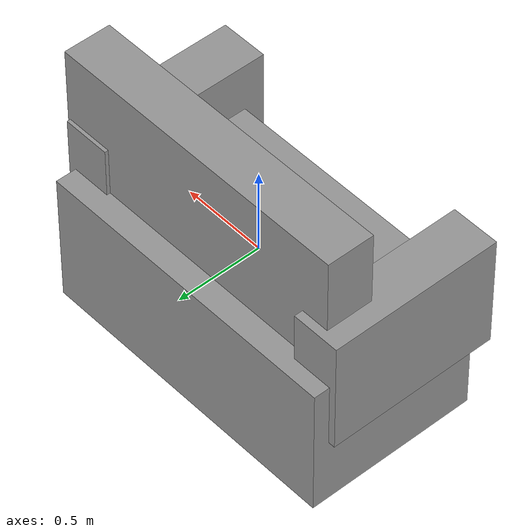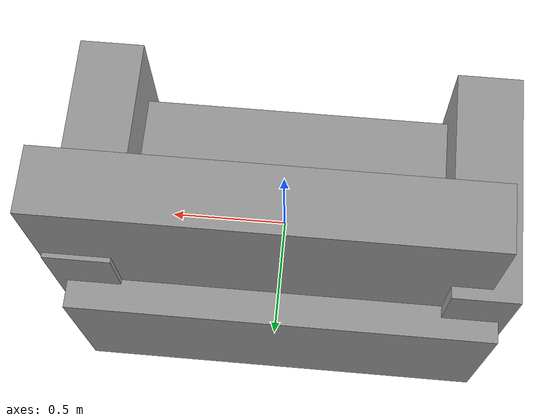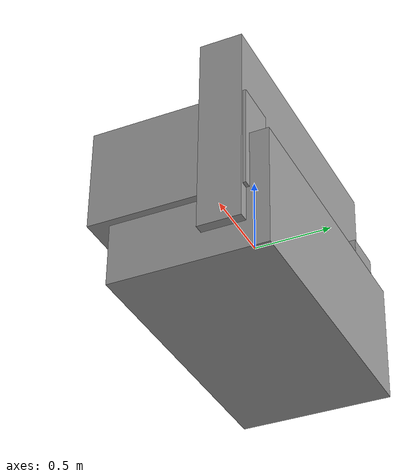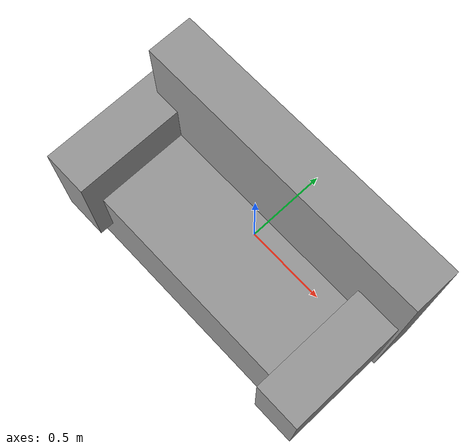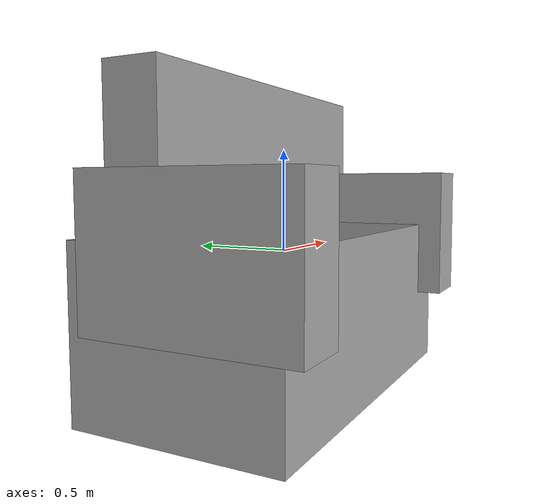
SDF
<?xml version='1.0'?>
<sdf version='1.6'>
  <model name='couch'>
    <link name='link_0'>
      <pose frame=''>-0.01902 -0.002099 -0.285741 0 -0 0</pose>
      <inertial>
        <mass>1.44585</mass>
        <inertia>
          <ixx>0.195146</ixx>
          <ixy>0</ixy>
          <ixz>0</ixz>
          <iyy>0.481156</iyy>
          <iyz>0</iyz>
          <izz>0.526986</izz>
        </inertia>
        <pose frame=''>0 0 0 0 -0 0</pose>
      </inertial>
      <visual name='visual'>
        <pose frame=''>0 0 0 0 -0 0</pose>
        <geometry>
          <box>
            <size>1.83678 1 0.787161</size>
          </box>
        </geometry>
        <material>
          <lighting>1</lighting>
          <script>
            <uri>file://media/materials/scripts/gazebo.material</uri>
            <name>Gazebo/Grey</name>
          </script>
          <ambient>0.3 0.3 0.3 1</ambient>
          <diffuse>0.7 0.7 0.7 1</diffuse>
          <specular>0.01 0.01 0.01 1</specular>
          <emissive>0 0 0 1</emissive>
        </material>
        <cast_shadows>1</cast_shadows>
        <transparency>0</transparency>
      </visual>
      <collision name='collision'>
        <laser_retro>0</laser_retro>
        <max_contacts>10</max_contacts>
        <pose frame=''>0 0 0 0 -0 0</pose>
        <geometry>
          <box>
            <size>1.83678 1 0.787161</size>
          </box>
        </geometry>
        <surface>
          <friction>
            <ode>
              <mu>1</mu>
              <mu2>1</mu2>
              <fdir1>0 0 0</fdir1>
              <slip1>0</slip1>
              <slip2>0</slip2>
            </ode>
            <torsional>
              <coefficient>1</coefficient>
              <patch_radius>0</patch_radius>
              <surface_radius>0</surface_radius>
              <use_patch_radius>1</use_patch_radius>
              <ode>
                <slip>0</slip>
              </ode>
            </torsional>
          </friction>
          <bounce>
            <restitution_coefficient>0</restitution_coefficient>
            <threshold>1e+06</threshold>
          </bounce>
          <contact>
            <collide_without_contact>0</collide_without_contact>
            <collide_without_contact_bitmask>1</collide_without_contact_bitmask>
            <collide_bitmask>1</collide_bitmask>
            <ode>
              <soft_cfm>0</soft_cfm>
              <soft_erp>0.2</soft_erp>
              <kp>1e+13</kp>
              <kd>1</kd>
              <max_vel>0.01</max_vel>
              <min_depth>0</min_depth>
            </ode>
            <bullet>
              <split_impulse>1</split_impulse>
              <split_impulse_penetration_threshold>-0.01</split_impulse_penetration_threshold>
              <soft_cfm>0</soft_cfm>
              <soft_erp>0.2</soft_erp>
              <kp>1e+13</kp>
              <kd>1</kd>
            </bullet>
          </contact>
        </surface>
      </collision>
    </link>
    <link name='link_1'>
      <pose frame=''>-0.837255 -0.094169 0.060748 0 -0 0</pose>
      <inertial>
        <mass>0.187695</mass>
        <inertia>
          <ixx>0.0226851</ixx>
          <ixy>0</ixy>
          <ixz>0</ixz>
          <iyy>0.00826742</iyy>
          <iyz>0</iyz>
          <izz>0.0168649</izz>
        </inertia>
        <pose frame=''>0 0 0 0 -0 0</pose>
      </inertial>
      <visual name='visual'>
        <pose frame=''>0 0 0 0 -0 0</pose>
        <geometry>
          <box>
            <size>0.279699 1 0.671069</size>
          </box>
        </geometry>
        <material>
          <lighting>1</lighting>
          <script>
            <uri>file://media/materials/scripts/gazebo.material</uri>
            <name>Gazebo/Grey</name>
          </script>
          <ambient>0.3 0.3 0.3 1</ambient>
          <diffuse>0.7 0.7 0.7 1</diffuse>
          <specular>0.01 0.01 0.01 1</specular>
          <emissive>0 0 0 1</emissive>
        </material>
        <cast_shadows>1</cast_shadows>
        <transparency>0</transparency>
      </visual>
      <collision name='collision'>
        <laser_retro>0</laser_retro>
        <max_contacts>10</max_contacts>
        <pose frame=''>0 0 0 0 -0 0</pose>
        <geometry>
          <box>
            <size>0.279699 1 0.671069</size>
          </box>
        </geometry>
        <surface>
          <friction>
            <ode>
              <mu>1</mu>
              <mu2>1</mu2>
              <fdir1>0 0 0</fdir1>
              <slip1>0</slip1>
              <slip2>0</slip2>
            </ode>
            <torsional>
              <coefficient>1</coefficient>
              <patch_radius>0</patch_radius>
              <surface_radius>0</surface_radius>
              <use_patch_radius>1</use_patch_radius>
              <ode>
                <slip>0</slip>
              </ode>
            </torsional>
          </friction>
          <bounce>
            <restitution_coefficient>0</restitution_coefficient>
            <threshold>1e+06</threshold>
          </bounce>
          <contact>
            <collide_without_contact>0</collide_without_contact>
            <collide_without_contact_bitmask>1</collide_without_contact_bitmask>
            <collide_bitmask>1</collide_bitmask>
            <ode>
              <soft_cfm>0</soft_cfm>
              <soft_erp>0.2</soft_erp>
              <kp>1e+13</kp>
              <kd>1</kd>
              <max_vel>0.01</max_vel>
              <min_depth>0</min_depth>
            </ode>
            <bullet>
              <split_impulse>1</split_impulse>
              <split_impulse_penetration_threshold>-0.01</split_impulse_penetration_threshold>
              <soft_cfm>0</soft_cfm>
              <soft_erp>0.2</soft_erp>
              <kp>1e+13</kp>
              <kd>1</kd>
            </bullet>
          </contact>
        </surface>
      </collision>
    </link>
    <link name='link_1_clone'>
      <pose frame=''>0.806895 -0.123312 0.060748 0 -0 0</pose>
      <inertial>
        <mass>0.187695</mass>
        <inertia>
          <ixx>0.0226851</ixx>
          <ixy>0</ixy>
          <ixz>0</ixz>
          <iyy>0.00826742</iyy>
          <iyz>0</iyz>
          <izz>0.0168649</izz>
        </inertia>
        <pose frame=''>0 0 0 0 -0 0</pose>
      </inertial>
      <visual name='visual'>
        <pose frame=''>0 0 0 0 -0 0</pose>
        <geometry>
          <box>
            <size>0.279699 1 0.671069</size>
          </box>
        </geometry>
        <material>
          <lighting>1</lighting>
          <script>
            <uri>file://media/materials/scripts/gazebo.material</uri>
            <name>Gazebo/Grey</name>
          </script>
          <ambient>0.3 0.3 0.3 1</ambient>
          <diffuse>0.7 0.7 0.7 1</diffuse>
          <specular>0.01 0.01 0.01 1</specular>
          <emissive>0 0 0 1</emissive>
          <shader type='pixel'/>
        </material>
        <cast_shadows>1</cast_shadows>
        <transparency>0</transparency>
      </visual>
      <collision name='collision'>
        <laser_retro>0</laser_retro>
        <max_contacts>10</max_contacts>
        <pose frame=''>0 0 0 0 -0 0</pose>
        <geometry>
          <box>
            <size>0.279699 1 0.671069</size>
          </box>
        </geometry>
        <surface>
          <friction>
            <ode>
              <mu>1</mu>
              <mu2>1</mu2>
              <fdir1>0 0 0</fdir1>
              <slip1>0</slip1>
              <slip2>0</slip2>
            </ode>
            <torsional>
              <coefficient>1</coefficient>
              <patch_radius>0</patch_radius>
              <surface_radius>0</surface_radius>
              <use_patch_radius>1</use_patch_radius>
              <ode>
                <slip>0</slip>
              </ode>
            </torsional>
          </friction>
          <bounce>
            <restitution_coefficient>0</restitution_coefficient>
            <threshold>1e+06</threshold>
          </bounce>
          <contact>
            <collide_without_contact>0</collide_without_contact>
            <collide_without_contact_bitmask>1</collide_without_contact_bitmask>
            <collide_bitmask>1</collide_bitmask>
            <ode>
              <soft_cfm>0</soft_cfm>
              <soft_erp>0.2</soft_erp>
              <kp>1e+13</kp>
              <kd>1</kd>
              <max_vel>0.01</max_vel>
              <min_depth>0</min_depth>
            </ode>
            <bullet>
              <split_impulse>1</split_impulse>
              <split_impulse_penetration_threshold>-0.01</split_impulse_penetration_threshold>
              <soft_cfm>0</soft_cfm>
              <soft_erp>0.2</soft_erp>
              <kp>1e+13</kp>
              <kd>1</kd>
            </bullet>
          </contact>
        </surface>
      </collision>
    </link>
    <link name='link_2'>
      <pose frame=''>0.049389 0.21958 0.164245 0 -0 0</pose>
      <inertial>
        <mass>0.659998</mass>
        <inertia>
          <ixx>0.100915</ixx>
          <ixy>0</ixy>
          <ixz>0</ixz>
          <iyy>0.279803</iyy>
          <iyz>0</iyz>
          <izz>0.187069</izz>
        </inertia>
        <pose frame=''>0 0 0 0 -0 0</pose>
      </inertial>
      <visual name='visual'>
        <pose frame=''>0 0 0 0 -0 0</pose>
        <geometry>
          <box>
            <size>1.82397 0.272721 1.32681</size>
          </box>
        </geometry>
        <material>
          <lighting>1</lighting>
          <script>
            <uri>file://media/materials/scripts/gazebo.material</uri>
            <name>Gazebo/Grey</name>
          </script>
          <ambient>0.3 0.3 0.3 1</ambient>
          <diffuse>0.7 0.7 0.7 1</diffuse>
          <specular>0.01 0.01 0.01 1</specular>
          <emissive>0 0 0 1</emissive>
        </material>
        <cast_shadows>1</cast_shadows>
        <transparency>0</transparency>
      </visual>
      <collision name='collision'>
        <laser_retro>0</laser_retro>
        <max_contacts>10</max_contacts>
        <pose frame=''>0 0 0 0 -0 0</pose>
        <geometry>
          <box>
            <size>1.82397 0.272721 1.32681</size>
          </box>
        </geometry>
        <surface>
          <friction>
            <ode>
              <mu>1</mu>
              <mu2>1</mu2>
              <fdir1>0 0 0</fdir1>
              <slip1>0</slip1>
              <slip2>0</slip2>
            </ode>
            <torsional>
              <coefficient>1</coefficient>
              <patch_radius>0</patch_radius>
              <surface_radius>0</surface_radius>
              <use_patch_radius>1</use_patch_radius>
              <ode>
                <slip>0</slip>
              </ode>
            </torsional>
          </friction>
          <bounce>
            <restitution_coefficient>0</restitution_coefficient>
            <threshold>1e+06</threshold>
          </bounce>
          <contact>
            <collide_without_contact>0</collide_without_contact>
            <collide_without_contact_bitmask>1</collide_without_contact_bitmask>
            <collide_bitmask>1</collide_bitmask>
            <ode>
              <soft_cfm>0</soft_cfm>
              <soft_erp>0.2</soft_erp>
              <kp>1e+13</kp>
              <kd>1</kd>
              <max_vel>0.01</max_vel>
              <min_depth>0</min_depth>
            </ode>
            <bullet>
              <split_impulse>1</split_impulse>
              <split_impulse_penetration_threshold>-0.01</split_impulse_penetration_threshold>
              <soft_cfm>0</soft_cfm>
              <soft_erp>0.2</soft_erp>
              <kp>1e+13</kp>
              <kd>1</kd>
            </bullet>
          </contact>
        </surface>
      </collision>
    </link>
    <static>0</static>
    <allow_auto_disable>1</allow_auto_disable>
  </model>
</sdf>
